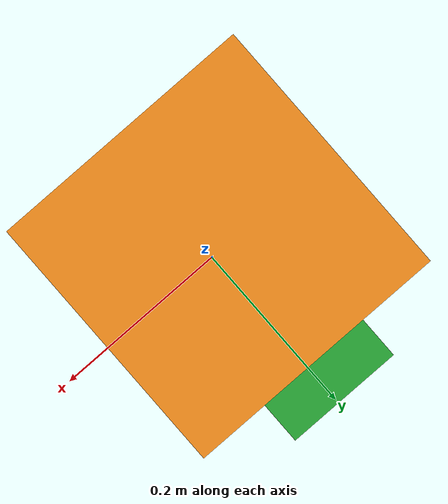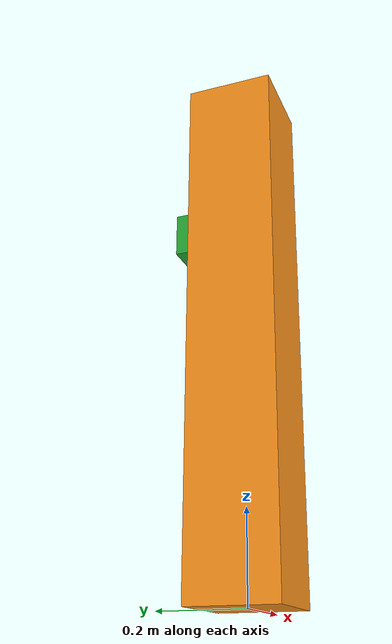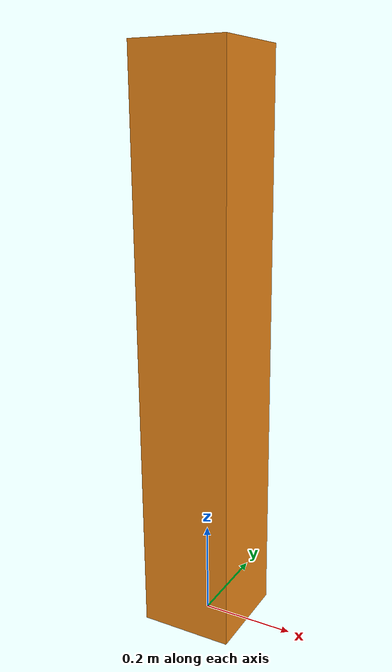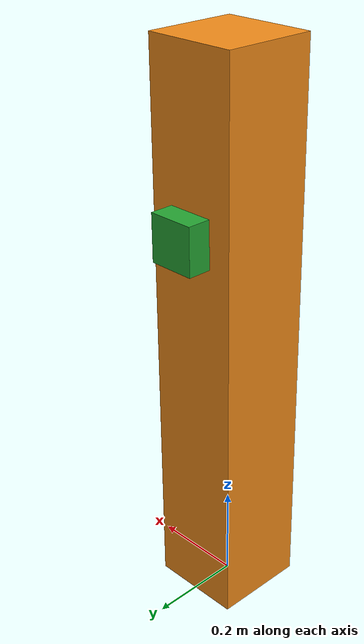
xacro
<?xml version='1.0'?>

<robot name="pole1" xmlns:xacro="http://www.ros.org/wiki/xacro">

  <!-- gazebo plugin files for sensors -->
  <xacro:include filename="$(find robotic_charger)/urdf/pole1.gazebo" />

  <!-- Constants for robot dimensions -->
  <xacro:property name="PI" value="3.1415926535897931"/>
  <xacro:property name="mass" value="100" /> <!-- arbitrary value for mass -->
  <xacro:property name="width" value="0.2" /> <!-- Square dimensions (widthxwidth) of beams -->
  <xacro:property name="height" value="1.2" /> <!-- Link 1 -->
  <xacro:property name="camera" value="0.1" /> <!-- Size of square 'camera' box -->

  <!-- Used for fixing pole to Gazebo 'base_link' -->
  <link name="world"/>

  <joint name="fixed" type="fixed">
    <parent link="world"/>
    <child link="pole"/>
  </joint>

  <!-- Base link -->
  <link name='pole'>

    <inertial>
      <mass value="${mass}"/>
      <origin xyz="0 0 ${height/2}" rpy=" 0 0 0"/>
      <inertia
          ixx="${mass / 12.0 * (width*width + height*height)}" ixy="0" ixz="0"
          iyy="${mass / 12.0 * (height*height + width*width)}" iyz="0"
          izz="${mass / 12.0 * (width*width + width*width)}"
      />
    </inertial>

    <collision name='collision'>
      <origin xyz="0 0 ${height/2}" rpy=" 0 0 0"/>
      <geometry>
        <box size="${width} ${width} ${height}"/>
      </geometry>
    </collision>

    <visual name='pole_visual'>
      <origin xyz="0 0 ${height/2}" rpy=" 0 0 0"/>
      <geometry>
        <box size="${width} ${width} ${height}"/>
      </geometry>
    </visual>

  </link>

  <joint name="camera_joint" type="fixed">
      <axis xyz="0 1 0" />
      <origin xyz="0 ${width/2} ${0.7*height} " rpy="0 0 0"/>
      <parent link="pole"/>
      <child link="pole1_camera"/>
  </joint>

  <!-- Camera -->
  <link name="pole1_camera">
    <collision>
      <origin xyz="0 0 0" rpy="0 0 0"/>
      <geometry>
        <box size="${camera} ${camera} ${camera}"/>
      </geometry>
    </collision>

    <visual>
      <origin xyz="0 0 0" rpy="0 0 0"/>
      <geometry>
        <box size="${camera} ${camera} ${camera}"/>
      </geometry>
    </visual>

    <inertial>
      <mass value="1e-5" />
      <origin xyz="0 0 0" rpy="0 0 0"/>
      <inertia ixx="1e-6" ixy="0" ixz="0" iyy="1e-6" iyz="0" izz="1e-6" />
    </inertial>
  </link>

  <!-- generate an optical frame http://www.ros.org/reps/rep-0103.html#suffix-frames
      so that ros and opencv can operate on the camera frame correctly -->
  <joint name="camera_optical_joint" type="fixed">
    <!-- these values have to be these values otherwise the gazebo camera image
        won't be aligned properly with the frame it is supposedly originating from -->
    <origin xyz="0 0 0" rpy="${-pi/2} 0 ${-pi/2}"/>
    <parent link="pole1_camera"/>
    <child link="camera_optical"/>
  </joint>

  <link name="camera_optical">
  </link>

  <gazebo reference="pole">
    <material>Gazebo/Orange</material>
  </gazebo>

  <gazebo reference="pole1_camera">
    <material>Gazebo/Green</material>
  </gazebo>

</robot>
